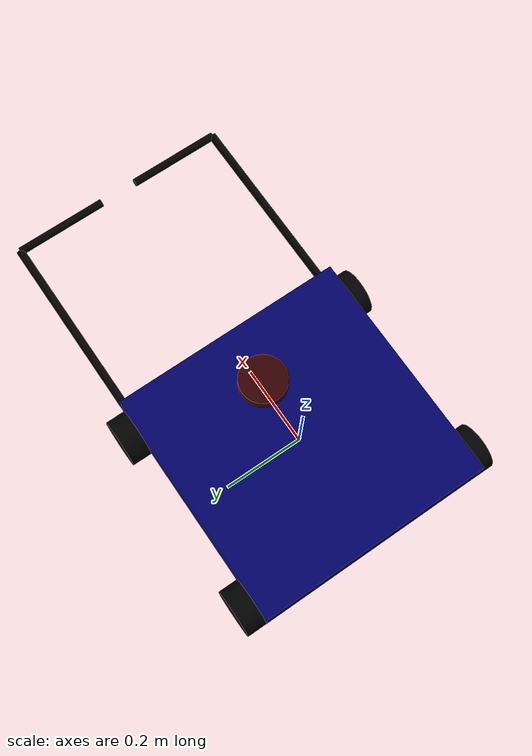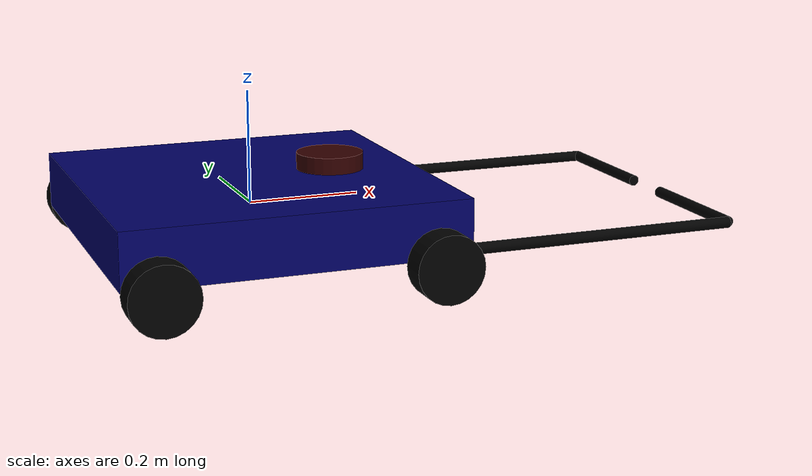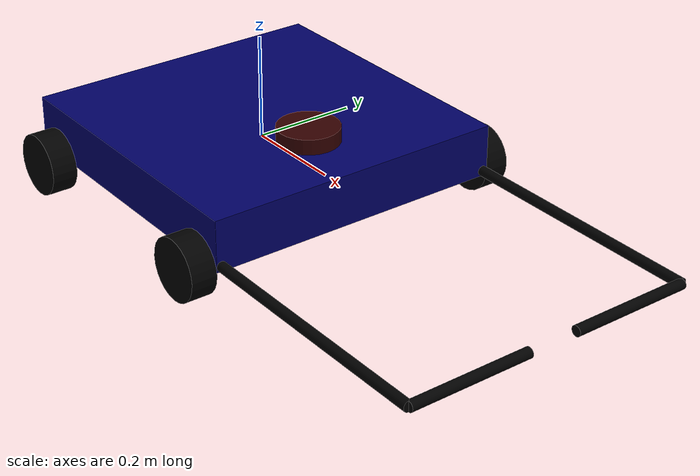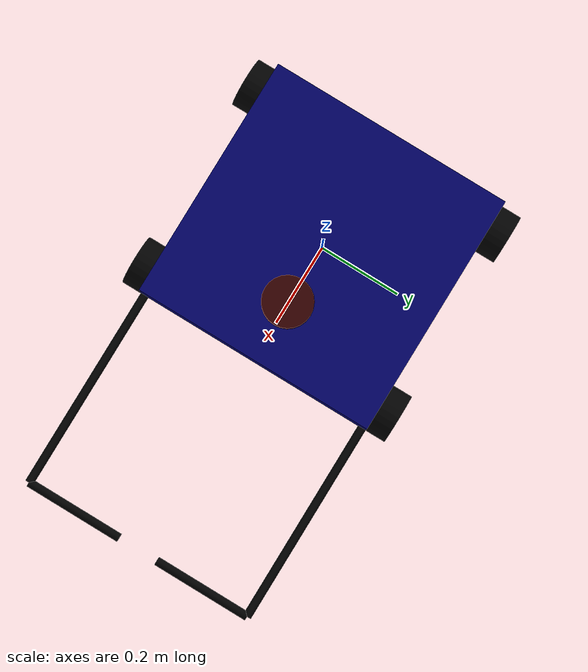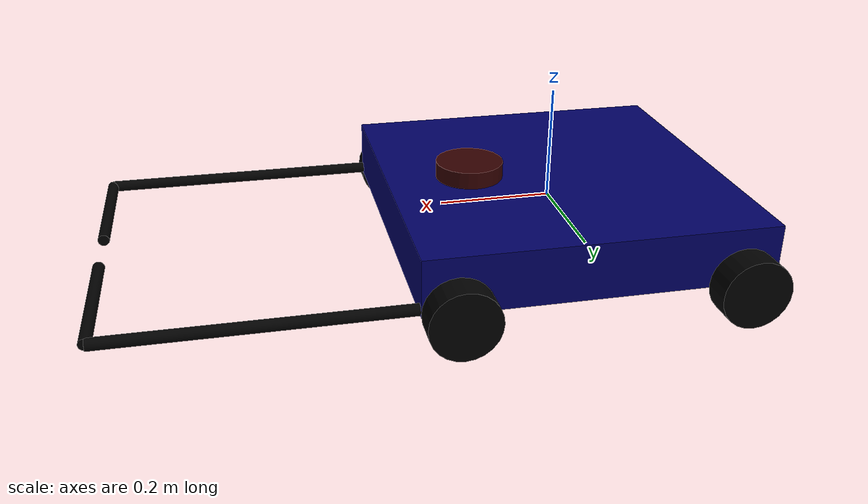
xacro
<?xml version="1.0"?>
<robot xmlns:xacro="http://www.ros.org/wiki/xacro" name="myfirst_xacro">

    <xacro:include filename="ros2_control.xacro" />

    <!-- Parameters -->
    <xacro:property name="base_length" value="0.6" />
    <xacro:property name="base_width" value="0.6" />
    <xacro:property name="base_height" value="0.1" />
    <xacro:property name="base_mass" value="2" />

    <xacro:property name="wheel_radius" value="0.06" />
    <xacro:property name="wheel_width" value="0.05" />
    <xacro:property name="wheel_mass" value="0.2" />

    <xacro:property name="omni_wheel_radius" value="0.04" />

    <xacro:property name="lidar_radius" value="0.06" />
    <xacro:property name="lidar_width" value="0.03" />
    <xacro:property name="lidar_mass" value="0.1" />

    <xacro:property name="arm_vert_length" value="0.5" />
    <xacro:property name="arm_vert_radius" value="0.01" />
    <xacro:property name="arm_horiz_length" value="${base_width*0.4}" />
    <xacro:property name="arm_horiz_radius" value="0.01" />
    <xacro:property name="arm_mass" value="0.01" />

    <!-- Derived -->
    <xacro:property name="base_to_ground" value="${wheel_radius + base_height/2}" />
    <xacro:property name="wheel_offset_y" value="${base_width / 2}" />
    <xacro:property name="wheel_offset_x" value="${(base_length / 2) - wheel_radius}" />
    <xacro:property name="omni_x" value="${base_length / 4}" />
    <xacro:property name="omni_z" value="${base_to_ground - (base_height/2) - omni_wheel_radius}" />

    <link name="base_link">

    </link>

    <joint name="base_footprint_joint" type="fixed">
        <parent link="base_link" />
        <child link="base_footprint" />
        <origin xyz="0 0 0" rpy="0 0 0" />
    </joint>

    <link name="base_footprint">
    </link>

    <joint name="chassis_joint" type="fixed">
        <parent link="base_link" />
        <child link="chassis" />
        <origin xyz="-0 0 0" />
    </joint>

    <link name="chassis">
        <visual>
            <geometry>
                <box size="${base_length} ${base_width} ${base_height}" />
            </geometry>
            <material name="blue">
                <color rgba="0.0 0.0 0.4 1.0" />
            </material>
        </visual>
        <collision>
            <geometry>
                <box size="${base_length} ${base_width} ${base_height}" />
            </geometry>
        </collision>
        <inertial>
            <mass value="${base_mass}" />
            <inertia
                ixx="${(1.0/12.0) * base_mass * (base_width*base_width + base_height*base_height)}"
                iyy="${(1.0/12.0) * base_mass * (base_length*base_length + base_height*base_height)}"
                izz="${(1.0/12.0) * base_mass * (base_length*base_length + base_width*base_width)}"
                ixy="0"
                ixz="0"
                iyz="0"
            />
        </inertial>
    </link>

    <!-- Wheel Macro -->
    <xacro:macro name="wheel" params="name parent x y z rpy axs">
        <link name="${name}">
            <visual>
                <geometry>
                    <cylinder length="${wheel_width}" radius="${wheel_radius}" />
                </geometry>
                <origin xyz="0 -0.005 ${wheel_width/2}" />
                <material name="black">
                    <color rgba="0.0 0.0 0.0 1.0" />
                </material>
            </visual>
            <collision>
                <geometry>
                    <cylinder length="${wheel_width}" radius="${wheel_radius}" />
                </geometry>
                <origin xyz="0 0 ${wheel_width/2}" />
            </collision>
            <inertial>
                <mass value="${wheel_mass}" />
                <inertia
                    ixx="${(1.0/12.0) * wheel_mass * (3*wheel_radius*wheel_radius + wheel_width*wheel_width)}"
                    iyy="${(1.0/12.0) * wheel_mass * (3*wheel_radius*wheel_radius + wheel_width*wheel_width)}"
                    izz="${0.5 * wheel_mass * wheel_radius * wheel_radius}"
                    ixy="0" ixz="0" iyz="0"
                />
                <origin xyz="0 0 ${wheel_width/2}" />
            </inertial>
        </link>

        <gazebo reference="${name}">
            <mu1>1.0</mu1>
            <mu2>0.1</mu2>
            <fdir1>1 0 0</fdir1>
        </gazebo>

        <joint name="${parent}_to_${name}" type="continuous">
            <parent link="${parent}" />
            <child link="${name}" />
            <origin xyz="${x} ${y} ${z}" rpy="${rpy}" />
            <axis xyz="${axs}" />
        </joint>
    </xacro:macro>

    <!-- Lidar Macro -->
    <xacro:macro name="lidar" params="name parent x y z rpy">
        <link name="${name}">
            <visual>
                <geometry>
                    <cylinder length="${lidar_width}" radius="${lidar_radius}" />
                </geometry>
                <origin xyz="0 0 ${lidar_width/2}" />
                <material name="red">
                    <color rgba="0.2 0.0 0.0 1.0" />
                </material>
            </visual>
            <collision>
                <geometry>
                    <cylinder length="${lidar_width}" radius="${lidar_radius}" />
                </geometry>
                <origin xyz="0 0 ${lidar_width/2}" />
            </collision>
            <inertial>
                <mass value="${lidar_mass}" />
                <inertia
                    ixx="${(1.0/12.0) * lidar_mass * (3*lidar_radius*lidar_radius + lidar_width*lidar_width)}"
                    iyy="${(1.0/12.0) * lidar_mass * (3*lidar_radius*lidar_radius + lidar_width*lidar_width)}"
                    izz="${0.5 * lidar_mass * lidar_radius * lidar_radius}"
                    ixy="0" ixz="0" iyz="0"
                />
                <origin xyz="0 0 ${lidar_width/2}" />
            </inertial>
        </link>

        <joint name="${parent}_to_${name}" type="fixed">
            <parent link="${parent}" />
            <child link="${name}" />
            <origin xyz="${x} ${y} ${z}" rpy="${rpy}" />
            <axis xyz="0 0 1" />
        </joint>

        <gazebo reference="${name}">
            <sensor name="${name}_sensor" type="gpu_lidar">
                <pose>0 0 ${lidar_width/2} 0 0 0</pose>
                <topic>${name}/scan</topic>
                <update_rate>10</update_rate>
                <ray>
                    <scan>
                        <horizontal>
                            <samples>1024</samples>
                            <resolution>1</resolution>
                            <min_angle>-3.14159265</min_angle>
                            <max_angle>3.14159265</max_angle>
                        </horizontal>
                        <vertical>
                            <samples>1</samples>
                            <resolution>0.01</resolution>
                            <min_angle>0</min_angle>
                            <max_angle>0</max_angle>
                        </vertical>
                    </scan>
                    <range>
                        <min>0.75</min>
                        <max>10.0</max>
                        <resolution>0.01</resolution>
                    </range>
                </ray>
                <always_on>1</always_on>
                <visualize>true</visualize>
            </sensor>
        </gazebo>
    </xacro:macro>

    <!-- L-Shaped Arm Macro -->
    <xacro:macro name="arm_L" params="name parent x y z rpy axis dir=1">

        <link name="${name}">

            <!-- Vertical segment -->
            <visual>
                <geometry>
                    <cylinder length="${arm_vert_length}" radius="${arm_vert_radius}" />
                </geometry>
                <origin xyz="0 0 ${arm_vert_length/2}" />
                <material name="black">
                    <color rgba="0 0 0 1.0" />
                </material>
            </visual>

            <!-- Horizontal segment -->
            <visual>
                <geometry>
                    <cylinder length="${arm_horiz_length}" radius="${arm_horiz_radius}" />
                </geometry>
                <origin xyz="0 ${dir * arm_horiz_length/2} ${arm_vert_length}"
                    rpy="1.5708 0 0" />
                <material name="black">
                    <color rgba="0 0 0 1.0" />
                </material>
            </visual>

            <!-- Collisions -->
            <collision>
                <geometry>
                    <cylinder length="${arm_vert_length}" radius="${arm_vert_radius}" />
                </geometry>
                <origin xyz="0 0 ${arm_vert_length/2}" />
            </collision>

            <collision>
                <geometry>
                    <cylinder length="${arm_horiz_length}" radius="${arm_horiz_radius}" />
                </geometry>
                <origin xyz="0 ${dir * arm_horiz_length/2} ${arm_vert_length}"
                    rpy="1.5708 0 0" />
            </collision>

            <!-- Inertial -->
            <inertial>
                <mass value="${arm_mass}" />
                <origin xyz="0 0 ${arm_vert_length/2}" />
                <inertia
                    ixx="${(1.0/12.0)*arm_mass*(3*arm_vert_radius*arm_vert_radius + arm_vert_length*arm_vert_length)}"
                    iyy="${(1.0/12.0)*arm_mass*(3*arm_vert_radius*arm_vert_radius + arm_vert_length*arm_vert_length)}"
                    izz="${0.5 * arm_mass * arm_vert_radius * arm_vert_radius}"
                    ixy="0" ixz="0" iyz="0"
                />
            </inertial>

        </link>

        <!-- Joint -->
        <joint name="${parent}_to_${name}" type="continuous">
            <parent link="${parent}" />
            <child link="${name}" />
            <origin xyz="${x} ${y} ${z}" rpy="${rpy}" />
            <axis xyz="${axis}" />
        </joint>

    </xacro:macro>

    <!-- Wheels -->
    <xacro:wheel name="lb_wheel"
        parent="chassis"
        x="${-wheel_offset_x}"
        y="${wheel_offset_y}"
        z="${-base_height/2}"
        rpy="-1.57075 0 0"
        axs="0 0 1" />
    <xacro:wheel name="rb_wheel"
        parent="chassis"
        x="${-wheel_offset_x}"
        y="${-wheel_offset_y}"
        z="${-base_height/2}"
        rpy="1.57075 0 0"
        axs="0 0 -1" />

    <xacro:wheel name="lf_wheel"
        parent="chassis"
        x="${+wheel_offset_x}"
        y="${wheel_offset_y}"
        z="${-base_height/2}"
        rpy="-1.57075 0 0"
        axs="0 0 1" />
    <xacro:wheel name="rf_wheel"
        parent="chassis"
        x="${+wheel_offset_x}"
        y="${-wheel_offset_y}"
        z="${-base_height/2}"
        rpy="1.57075 0 0"
        axs="0 0 -1" />

    <!-- Lidar -->
    <xacro:lidar name="lidar1"
        parent="chassis"
        x="0.15"
        y="0"
        z="${base_height/2}"
        rpy="0 0 0" />

    <xacro:arm_L
        name="arm1"
        parent="chassis"
        x="${base_length/2}" y="${base_width/2 - arm_vert_radius}"
        z="${-(base_height/2 - arm_vert_radius)}"
        rpy="0 1.5708 0"
        axis="0 0 1"
        dir="-1"
    />

    <xacro:arm_L
        name="arm2"
        parent="chassis"
        x="${base_length/2}" y="${-(base_width/2 - arm_vert_radius)}"
        z="${-(base_height/2 - arm_vert_radius)}"
        rpy="0 1.5708 0"
        axis="0 0 1"
    />

</robot>
